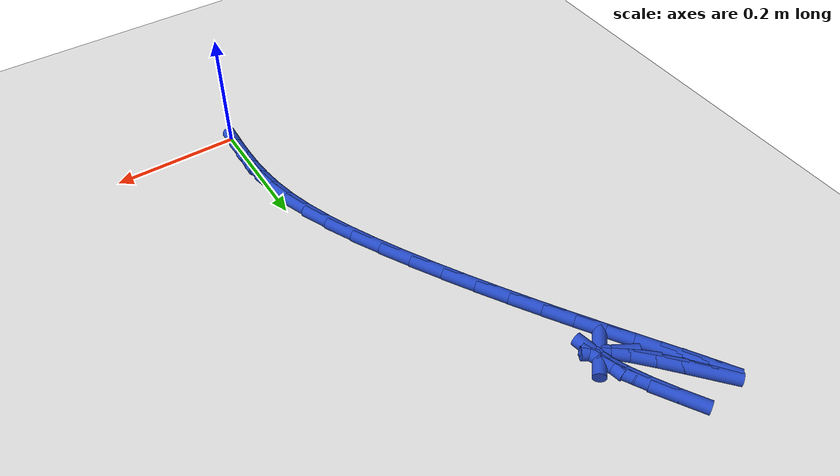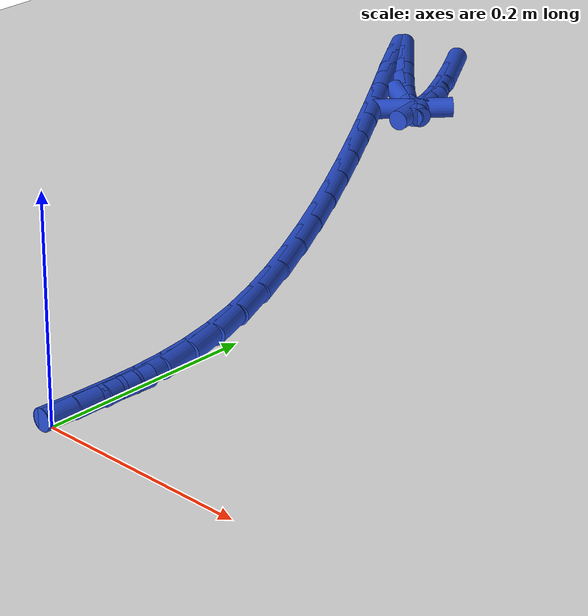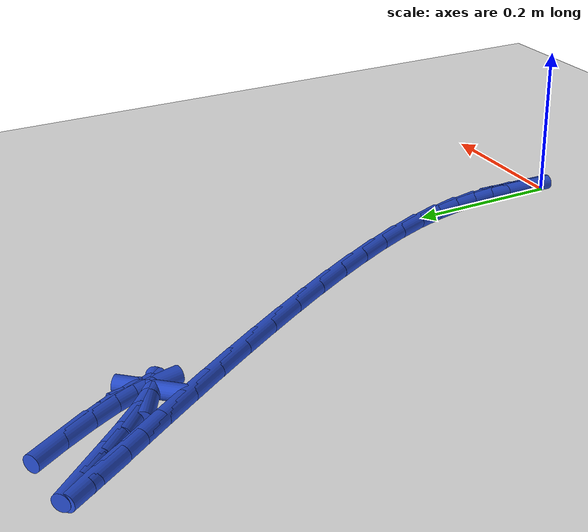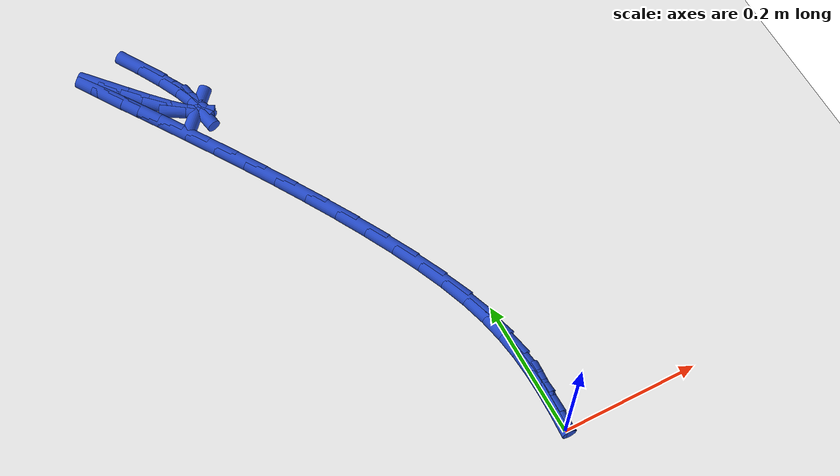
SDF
<sdf version="1.6">
 <world name="default">
  <model name="ground_plane">
   <static>1</static>
   <link name="link">
    <collision name="collision">
     <geometry><plane><normal>0 0 1</normal><size>100 100</size></plane></geometry>
     <surface><friction><ode><mu>100</mu><mu2>50</mu2></ode></friction></surface>
    </collision>
    <visual name="visual">
     <cast_shadows>0</cast_shadows>
     <geometry><plane><normal>0 0 1</normal><size>100 100</size></plane></geometry>
     <material>
      <script><uri>file://media/materials/scripts/gazebo.material</uri><name>Gazebo/WhiteGlow</name></script>
     </material>
    </visual>
   </link>
  </model>
  <model name="line">
   <link name="link_1">
    <pose>0.0011957025855414834 0.03034617823514206 0.01 0 1.57 1.5527518922761108</pose>
    <collision name="collision">
     <geometry><cylinder><radius>0.01</radius><length>0.08</length></cylinder></geometry>
    </collision>
    <visual name="visual">
     <material>
      <script><name>Gazebo/Blue</name><uri>file://media/materials/scripts/gazebo.material</uri></script>
     </material>
     <geometry><cylinder><radius>0.01</radius><length>0.08</length></cylinder></geometry>
    </visual>
   </link>
   <link name="link_2">
    <pose>0.0017354182623642966 0.06025329987738771 0.01 0 1.57 -1.549297469735532</pose>
    <collision name="collision">
     <geometry><cylinder><radius>0.01</radius><length>0.08</length></cylinder></geometry>
    </collision>
    <visual name="visual">
     <material>
      <script><name>Gazebo/Blue</name><uri>file://media/materials/scripts/gazebo.material</uri></script>
     </material>
     <geometry><cylinder><radius>0.01</radius><length>0.08</length></cylinder></geometry>
    </visual>
   </link>
   <link name="link_3">
    <pose>0.001090332900022824 0.09025424230714581 0.01 0 1.57 -1.4939358844110877</pose>
    <collision name="collision">
     <geometry><cylinder><radius>0.01</radius><length>0.08</length></cylinder></geometry>
    </collision>
    <visual name="visual">
     <material>
      <script><name>Gazebo/Blue</name><uri>file://media/materials/scripts/gazebo.material</uri></script>
     </material>
     <geometry><cylinder><radius>0.01</radius><length>0.08</length></cylinder></geometry>
    </visual>
   </link>
   <link name="link_4">
    <pose>-0.0012683676319285384 0.12088188290482527 0.01 0 1.57 -1.4270469136256383</pose>
    <collision name="collision">
     <geometry><cylinder><radius>0.01</radius><length>0.08</length></cylinder></geometry>
    </collision>
    <visual name="visual">
     <material>
      <script><name>Gazebo/Blue</name><uri>file://media/materials/scripts/gazebo.material</uri></script>
     </material>
     <geometry><cylinder><radius>0.01</radius><length>0.08</length></cylinder></geometry>
    </visual>
   </link>
   <link name="link_5">
    <pose>-0.0058694974639353845 0.15266909905083492 0.01 0 1.57 -1.3540509860456753</pose>
    <collision name="collision">
     <geometry><cylinder><radius>0.01</radius><length>0.08</length></cylinder></geometry>
    </collision>
    <visual name="visual">
     <material>
      <script><name>Gazebo/Blue</name><uri>file://media/materials/scripts/gazebo.material</uri></script>
     </material>
     <geometry><cylinder><radius>0.01</radius><length>0.08</length></cylinder></geometry>
    </visual>
   </link>
   <link name="link_6">
    <pose>-0.013241870726443332 0.18614876812558376 0.01 0 1.57 -1.2803437025456075</pose>
    <collision name="collision">
     <geometry><cylinder><radius>0.01</radius><length>0.08</length></cylinder></geometry>
    </collision>
    <visual name="visual">
     <material>
      <script><name>Gazebo/Blue</name><uri>file://media/materials/scripts/gazebo.material</uri></script>
     </material>
     <geometry><cylinder><radius>0.01</radius><length>0.08</length></cylinder></geometry>
    </visual>
   </link>
   <link name="link_7">
    <pose>-0.023914301549897977 0.22185376750948052 0.01 0 1.57 -1.2114050068358515</pose>
    <collision name="collision">
     <geometry><cylinder><radius>0.01</radius><length>0.08</length></cylinder></geometry>
    </collision>
    <visual name="visual">
     <material>
      <script><name>Gazebo/Blue</name><uri>file://media/materials/scripts/gazebo.material</uri></script>
     </material>
     <geometry><cylinder><radius>0.01</radius><length>0.08</length></cylinder></geometry>
    </visual>
   </link>
   <link name="link_8">
    <pose>-0.03833355045311387 0.2602326290638309 0.01 0 1.57 -1.1566921765645992</pose>
    <collision name="collision">
     <geometry><cylinder><radius>0.01</radius><length>0.08</length></cylinder></geometry>
    </collision>
    <visual name="visual">
     <material>
      <script><name>Gazebo/Blue</name><uri>file://media/materials/scripts/gazebo.material</uri></script>
     </material>
     <geometry><cylinder><radius>0.01</radius><length>0.08</length></cylinder></geometry>
    </visual>
   </link>
   <link name="link_9">
    <pose>-0.05626739566768492 0.3010359371453852 0.01 0 1.57 -1.1153612259383174</pose>
    <collision name="collision">
     <geometry><cylinder><radius>0.01</radius><length>0.08</length></cylinder></geometry>
    </collision>
    <visual name="visual">
     <material>
      <script><name>Gazebo/Blue</name><uri>file://media/materials/scripts/gazebo.material</uri></script>
     </material>
     <geometry><cylinder><radius>0.01</radius><length>0.08</length></cylinder></geometry>
    </visual>
   </link>
   <link name="link_10">
    <pose>-0.07714838643177577 0.34366968355844885 0.01 0 1.57 -1.0832880244415644</pose>
    <collision name="collision">
     <geometry><cylinder><radius>0.01</radius><length>0.08</length></cylinder></geometry>
    </collision>
    <visual name="visual">
     <material>
      <script><name>Gazebo/Blue</name><uri>file://media/materials/scripts/gazebo.material</uri></script>
     </material>
     <geometry><cylinder><radius>0.01</radius><length>0.08</length></cylinder></geometry>
    </visual>
   </link>
   <link name="link_11">
    <pose>-0.1004067029873917 0.3875374249407714 0.01 0 1.57 -1.0578677422182863</pose>
    <collision name="collision">
     <geometry><cylinder><radius>0.01</radius><length>0.08</length></cylinder></geometry>
    </collision>
    <visual name="visual">
     <material>
      <script><name>Gazebo/Blue</name><uri>file://media/materials/scripts/gazebo.material</uri></script>
     </material>
     <geometry><cylinder><radius>0.01</radius><length>0.08</length></cylinder></geometry>
    </visual>
   </link>
   <link name="link_12">
    <pose>-0.12547252557653785 0.4320427179301024 0.01 0 1.57 -1.037410398256839</pose>
    <collision name="collision">
     <geometry><cylinder><radius>0.01</radius><length>0.08</length></cylinder></geometry>
    </collision>
    <visual name="visual">
     <material>
      <script><name>Gazebo/Blue</name><uri>file://media/materials/scripts/gazebo.material</uri></script>
     </material>
     <geometry><cylinder><radius>0.01</radius><length>0.08</length></cylinder></geometry>
    </visual>
   </link>
   <link name="link_13">
    <pose>-0.15177603444121956 0.4765891191641915 0.01 0 1.57 -1.0207926357691341</pose>
    <collision name="collision">
     <geometry><cylinder><radius>0.01</radius><length>0.08</length></cylinder></geometry>
    </collision>
    <visual name="visual">
     <material>
      <script><name>Gazebo/Blue</name><uri>file://media/materials/scripts/gazebo.material</uri></script>
     </material>
     <geometry><cylinder><radius>0.01</radius><length>0.08</length></cylinder></geometry>
    </visual>
   </link>
   <link name="link_14">
    <pose>-0.17874740982344212 0.5205801852807884 0.01 0 1.57 -1.0072626667277371</pose>
    <collision name="collision">
     <geometry><cylinder><radius>0.01</radius><length>0.08</length></cylinder></geometry>
    </collision>
    <visual name="visual">
     <material>
      <script><name>Gazebo/Blue</name><uri>file://media/materials/scripts/gazebo.material</uri></script>
     </material>
     <geometry><cylinder><radius>0.01</radius><length>0.08</length></cylinder></geometry>
    </visual>
   </link>
   <link name="link_15">
    <pose>-0.20581683196521067 0.5634194729176425 0.01 0 1.57 -0.9963317668894072</pose>
    <collision name="collision">
     <geometry><cylinder><radius>0.01</radius><length>0.08</length></cylinder></geometry>
    </collision>
    <visual name="visual">
     <material>
      <script><name>Gazebo/Blue</name><uri>file://media/materials/scripts/gazebo.material</uri></script>
     </material>
     <geometry><cylinder><radius>0.01</radius><length>0.08</length></cylinder></geometry>
    </visual>
   </link>
   <link name="link_16">
    <pose>-0.23241448110853055 0.6045105387125034 0.01 0 1.57 -0.9877212336688247</pose>
    <collision name="collision">
     <geometry><cylinder><radius>0.01</radius><length>0.08</length></cylinder></geometry>
    </collision>
    <visual name="visual">
     <material>
      <script><name>Gazebo/Blue</name><uri>file://media/materials/scripts/gazebo.material</uri></script>
     </material>
     <geometry><cylinder><radius>0.01</radius><length>0.08</length></cylinder></geometry>
    </visual>
   </link>
   <link name="link_17">
    <pose>-0.25797053749540705 0.643256939303121 0.01 0 1.57 -0.9813556035505789</pose>
    <collision name="collision">
     <geometry><cylinder><radius>0.01</radius><length>0.08</length></cylinder></geometry>
    </collision>
    <visual name="visual">
     <material>
      <script><name>Gazebo/Blue</name><uri>file://media/materials/scripts/gazebo.material</uri></script>
     </material>
     <geometry><cylinder><radius>0.01</radius><length>0.08</length></cylinder></geometry>
    </visual>
   </link>
   <link name="link_18">
    <pose>-0.2819151813678453 0.6790622313272446 0.01 0 1.57 -0.97741535014258</pose>
    <collision name="collision">
     <geometry><cylinder><radius>0.01</radius><length>0.08</length></cylinder></geometry>
    </collision>
    <visual name="visual">
     <material>
      <script><name>Gazebo/Blue</name><uri>file://media/materials/scripts/gazebo.material</uri></script>
     </material>
     <geometry><cylinder><radius>0.01</radius><length>0.08</length></cylinder></geometry>
    </visual>
   </link>
   <link name="link_19">
    <pose>-0.3036785929678507 0.7113299714226238 0.01 0 1.57 -0.9765076463094204</pose>
    <collision name="collision">
     <geometry><cylinder><radius>0.01</radius><length>0.08</length></cylinder></geometry>
    </collision>
    <visual name="visual">
     <material>
      <script><name>Gazebo/Blue</name><uri>file://media/materials/scripts/gazebo.material</uri></script>
     </material>
     <geometry><cylinder><radius>0.01</radius><length>0.08</length></cylinder></geometry>
    </visual>
   </link>
   <link name="link_20">
    <pose>-0.3226909525374284 0.7394637162270085 0.01 0 1.57 -0.9801572158109034</pose>
    <collision name="collision">
     <geometry><cylinder><radius>0.01</radius><length>0.08</length></cylinder></geometry>
    </collision>
    <visual name="visual">
     <material>
      <script><name>Gazebo/Blue</name><uri>file://media/materials/scripts/gazebo.material</uri></script>
     </material>
     <geometry><cylinder><radius>0.01</radius><length>0.08</length></cylinder></geometry>
    </visual>
   </link>
   <link name="link_21">
    <pose>-0.3383824403185837 0.762867022378148 0.01 0 1.57 -0.9924356090517462</pose>
    <collision name="collision">
     <geometry><cylinder><radius>0.01</radius><length>0.08</length></cylinder></geometry>
    </collision>
    <visual name="visual">
     <material>
      <script><name>Gazebo/Blue</name><uri>file://media/materials/scripts/gazebo.material</uri></script>
     </material>
     <geometry><cylinder><radius>0.01</radius><length>0.08</length></cylinder></geometry>
    </visual>
   </link>
   <link name="link_27">
    <pose>-0.3308936259842423 0.7705607020082742 0.01 0 1.57 -0.8380627643055365</pose>
    <collision name="collision">
     <geometry><cylinder><radius>0.01</radius><length>0.08</length></cylinder></geometry>
    </collision>
    <visual name="visual">
     <material>
      <script><name>Gazebo/Blue</name><uri>file://media/materials/scripts/gazebo.material</uri></script>
     </material>
     <geometry><cylinder><radius>0.01</radius><length>0.08</length></cylinder></geometry>
    </visual>
   </link>
   <link name="link_28">
    <pose>-0.3087101262112666 0.7459083266142429 0.01 0 1.57 -0.8315883247613354</pose>
    <collision name="collision">
     <geometry><cylinder><radius>0.01</radius><length>0.08</length></cylinder></geometry>
    </collision>
    <visual name="visual">
     <material>
      <script><name>Gazebo/Blue</name><uri>file://media/materials/scripts/gazebo.material</uri></script>
     </material>
     <geometry><cylinder><radius>0.01</radius><length>0.08</length></cylinder></geometry>
    </visual>
   </link>
   <link name="link_29">
    <pose>-0.28379719895911654 0.7185806813516706 0.01 0 1.57 -0.8065985358899385</pose>
    <collision name="collision">
     <geometry><cylinder><radius>0.01</radius><length>0.08</length></cylinder></geometry>
    </collision>
    <visual name="visual">
     <material>
      <script><name>Gazebo/Blue</name><uri>file://media/materials/scripts/gazebo.material</uri></script>
     </material>
     <geometry><cylinder><radius>0.01</radius><length>0.08</length></cylinder></geometry>
    </visual>
   </link>
   <link name="link_30">
    <pose>-0.25971211834724517 0.6934520963561535 0.01 0 1.57 -0.7418616986053189</pose>
    <collision name="collision">
     <geometry><cylinder><radius>0.01</radius><length>0.08</length></cylinder></geometry>
    </collision>
    <visual name="visual">
     <material>
      <script><name>Gazebo/Blue</name><uri>file://media/materials/scripts/gazebo.material</uri></script>
     </material>
     <geometry><cylinder><radius>0.01</radius><length>0.08</length></cylinder></geometry>
    </visual>
   </link>
   <link name="link_31">
    <pose>-0.24001215849510626 0.6753969017632875 0.01 0 1.57 -0.5046648595675626</pose>
    <collision name="collision">
     <geometry><cylinder><radius>0.01</radius><length>0.08</length></cylinder></geometry>
    </collision>
    <visual name="visual">
     <material>
      <script><name>Gazebo/Blue</name><uri>file://media/materials/scripts/gazebo.material</uri></script>
     </material>
     <geometry><cylinder><radius>0.01</radius><length>0.08</length></cylinder></geometry>
    </visual>
   </link>
   <link name="link_32">
    <pose>-0.22784411909766647 0.6686755800326889 0.01 0 1.57 0.8357996603777357</pose>
    <collision name="collision">
     <geometry><cylinder><radius>0.01</radius><length>0.08</length></cylinder></geometry>
    </collision>
    <visual name="visual">
     <material>
      <script><name>Gazebo/Blue</name><uri>file://media/materials/scripts/gazebo.material</uri></script>
     </material>
     <geometry><cylinder><radius>0.01</radius><length>0.08</length></cylinder></geometry>
    </visual>
   </link>
   <link name="link_33">
    <pose>-0.22357759358885643 0.6733954155016149 0.01 0 1.57 -1.3770946573760192</pose>
    <collision name="collision">
     <geometry><cylinder><radius>0.01</radius><length>0.08</length></cylinder></geometry>
    </collision>
    <visual name="visual">
     <material>
      <script><name>Gazebo/Blue</name><uri>file://media/materials/scripts/gazebo.material</uri></script>
     </material>
     <geometry><cylinder><radius>0.01</radius><length>0.08</length></cylinder></geometry>
    </visual>
   </link>
   <link name="link_34">
    <pose>-0.22643114071247908 0.6879423673105319 0.01 0 1.57 -1.1870102844306587</pose>
    <collision name="collision">
     <geometry><cylinder><radius>0.01</radius><length>0.08</length></cylinder></geometry>
    </collision>
    <visual name="visual">
     <material>
      <script><name>Gazebo/Blue</name><uri>file://media/materials/scripts/gazebo.material</uri></script>
     </material>
     <geometry><cylinder><radius>0.01</radius><length>0.08</length></cylinder></geometry>
    </visual>
   </link>
   <link name="link_35">
    <pose>-0.23561962079070545 0.7106968637619583 0.01 0 1.57 -1.1053226309123712</pose>
    <collision name="collision">
     <geometry><cylinder><radius>0.01</radius><length>0.08</length></cylinder></geometry>
    </collision>
    <visual name="visual">
     <material>
      <script><name>Gazebo/Blue</name><uri>file://media/materials/scripts/gazebo.material</uri></script>
     </material>
     <geometry><cylinder><radius>0.01</radius><length>0.08</length></cylinder></geometry>
    </visual>
   </link>
   <link name="link_36">
    <pose>-0.25035789414570697 0.7400393331584132 0.01 0 1.57 -1.053922432441229</pose>
    <collision name="collision">
     <geometry><cylinder><radius>0.01</radius><length>0.08</length></cylinder></geometry>
    </collision>
    <visual name="visual">
     <material>
      <script><name>Gazebo/Blue</name><uri>file://media/materials/scripts/gazebo.material</uri></script>
     </material>
     <geometry><cylinder><radius>0.01</radius><length>0.08</length></cylinder></geometry>
    </visual>
   </link>
   <link name="link_37">
    <pose>-0.2698608210996544 0.7743502038024145 0.01 0 1.57 -1.013245457825605</pose>
    <collision name="collision">
     <geometry><cylinder><radius>0.01</radius><length>0.08</length></cylinder></geometry>
    </collision>
    <visual name="visual">
     <material>
      <script><name>Gazebo/Blue</name><uri>file://media/materials/scripts/gazebo.material</uri></script>
     </material>
     <geometry><cylinder><radius>0.01</radius><length>0.08</length></cylinder></geometry>
    </visual>
   </link>
   <link name="link_271">
    <pose>0.0013204882839031107 0.030211835947660283 0.01 0 1.57 1.522047430389452</pose>
    <collision name="collision">
     <geometry><cylinder><radius>0.01</radius><length>0.08</length></cylinder></geometry>
    </collision>
    <visual name="visual">
     <material>
      <script><name>Gazebo/Blue</name><uri>file://media/materials/scripts/gazebo.material</uri></script>
     </material>
     <geometry><cylinder><radius>0.01</radius><length>0.08</length></cylinder></geometry>
    </visual>
   </link>
   <link name="link_272">
    <pose>0.0027337038492572636 0.05917856157753204 0.01 0 1.57 1.5246349842672706</pose>
    <collision name="collision">
     <geometry><cylinder><radius>0.01</radius><length>0.08</length></cylinder></geometry>
    </collision>
    <visual name="visual">
     <material>
      <script><name>Gazebo/Blue</name><uri>file://media/materials/scripts/gazebo.material</uri></script>
     </material>
     <geometry><cylinder><radius>0.01</radius><length>0.08</length></cylinder></geometry>
    </visual>
   </link>
  </model>
 </world>
</sdf>
